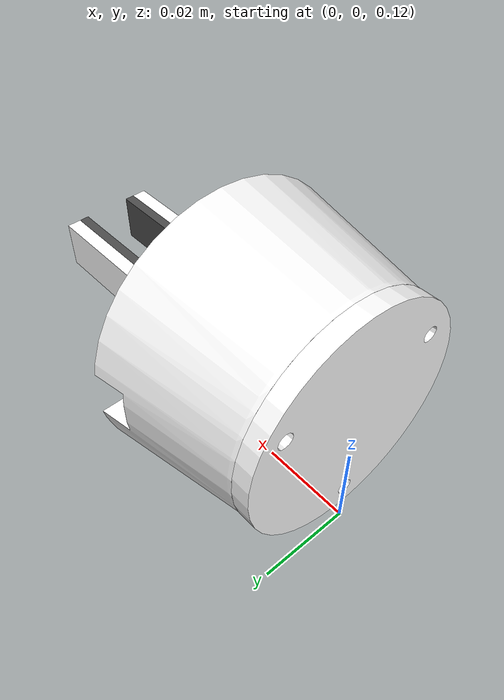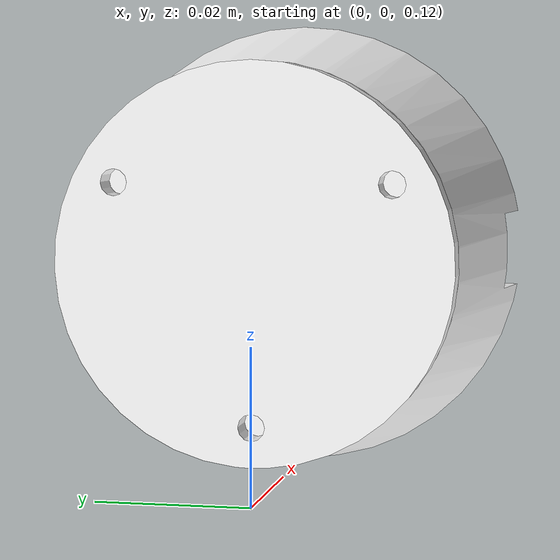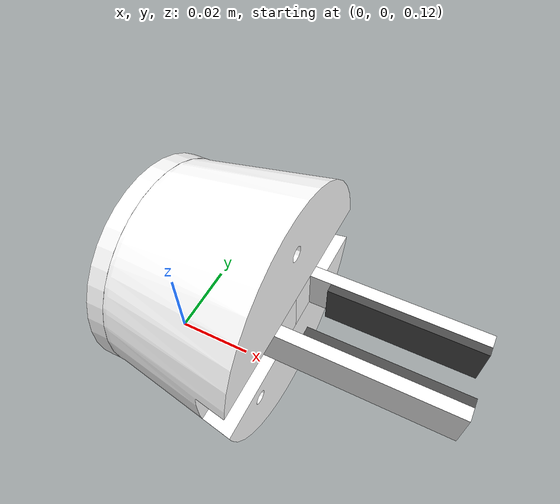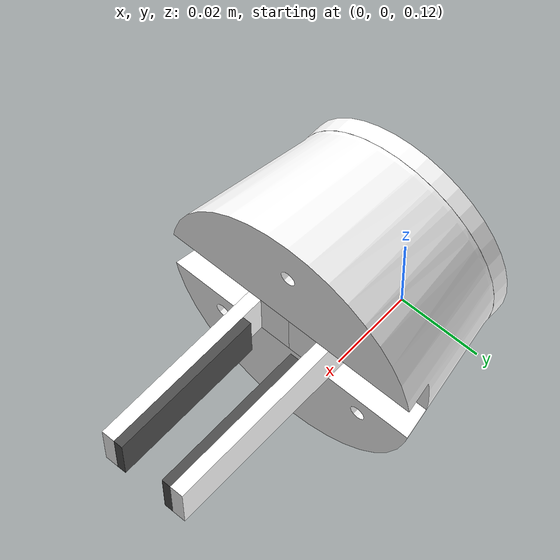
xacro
<?xml version="1.0"?>
<!-- Author: Emanuel Fallas Hernandez efallashdez@gmail.com -->
<!-- Published under GNU GPLv3 license -->

<!-- This xacro generates a simple parallel gripper that has variable z position -->
<robot name="thor" xmlns:xacro="http://www.ros.org/wiki/xacro">
  <xacro:arg name="prefix" default=""/>

  <!-- Load URDF XACRO -->
  <xacro:include filename="$(find gripper_description)/urdf/gripper.urdf.xacro"/>

  <xacro:macro name="generate_urdf" params="prefix">
    <xacro:gripper prefix="${prefix}"/>

    <link name="world" />

    <joint
      name="${prefix}base_prismatic"
      type="prismatic">
      <origin
        xyz="0 0 0.15"
        rpy="0 1.5708 0" />
      <parent link="world"/>
      <child link="${prefix}gripper_base"/>
      <axis
        xyz="-1 0 0" />
      <limit
        lower="0"
        upper="0.1"
        effort="100"
        velocity="1" />
      <dynamics
        damping="0.01" />
    </joint>

    <transmission name="${prefix}base_trans">
        <type>transmission_interface/SimpleTransmission</type>
        <joint name="${prefix}base_prismatic">
            <hardwareInterface>hardware_interface/EffortJointInterface</hardwareInterface>
        </joint>
        <actuator name="${prefix}base_motor">
            <hardwareInterface>hardware_interface/EffortJointInterface</hardwareInterface>
            <mechanicalReduction>1</mechanicalReduction>
        </actuator>
    </transmission>

    <!-- Gazebo -->
    <gazebo>
        <plugin name="gazebo_ros_control" filename="libgazebo_ros_control.so"/>
    </gazebo>

  </xacro:macro>

  <xacro:generate_urdf prefix="$(arg prefix)"/>

</robot>

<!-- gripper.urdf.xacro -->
<!-- Modified by: Emanuel Fallas Hernandez efallashdez@gmail.com -->
<!-- Published under GNU GPLv3 license -->

<!-- This xacro generates a simple parallel gripper that can be duplicated by using a prefix -->

<robot
  xmlns:xacro="http://wiki.ros.org/xacro">

  <!-- MAIN MACRO: Generates the URDF of the gripper-->
  <xacro:macro name="gripper" params="prefix">
    <!--File with gazebo configuration-->
    <xacro:include filename="$(find gripper_description)/urdf/gripper.gazebo"/>
    <!-- Import Transmission xacro file-->
    <xacro:include filename="$(find gripper_description)/urdf/transmission.xacro"/>
    <xacro:property name="effort_gripper" value="100" />
    <xacro:property name="velocity_gripper" value="0.1" />
    <xacro:property name="damping_gripper" value="0.1" />

    <link
      name="${prefix}gripper_base">
      <inertial>
        <origin
          xyz="-9.4786E-19 6.9421E-19 0.002"
          rpy="0 0 0" />
        <mass
          value="0.0078999" />
        <inertia
          ixx="1.24E-06"
          ixy="-1.0813E-22"
          ixz="1.2359E-25"
          iyy="1.24E-06"
          iyz="8.2395E-26"
          izz="2.4588E-06" />
      </inertial>
      <visual>
        <origin
          xyz="0 0 0"
          rpy="0 0 0" />
        <geometry>
          <mesh
            filename="package://gripper_description/meshes/base_link.STL" />
        </geometry>
        <material
          name="">
          <color
            rgba="1 1 1 1" />
        </material>
      </visual>
      <collision>
        <origin
          xyz="0 0 0"
          rpy="0 0 0" />
        <geometry>
          <mesh
            filename="package://gripper_description/meshes/base_link.STL" />
        </geometry>
      </collision>
    </link>
    <link
      name="${prefix}gripper_link">
      <inertial>
        <origin
          xyz="-0.037682 4.5614E-19 -3.4273E-18"
          rpy="0 0 0" />
        <mass
          value="0.069862" />
        <inertia
          ixx="2.6995E-05"
          ixy="1.1307E-21"
          ixz="-6.5874E-22"
          iyy="1.9395E-05"
          iyz="6.5987E-22"
          izz="1.8235E-05" />
      </inertial>
      <visual>
        <origin
          xyz="0 0 0"
          rpy="0 0 0" />
        <geometry>
          <mesh
            filename="package://gripper_description/meshes/gripper_link.STL" />
        </geometry>
        <material
          name="">
          <color
            rgba="1 1 1 1" />
        </material>
      </visual>
      <collision>
        <origin
          xyz="0 0 0"
          rpy="0 0 0" />
        <geometry>
          <mesh
            filename="package://gripper_description/meshes/gripper_link.STL" />
        </geometry>
      </collision>
    </link>
    <joint
      name="${prefix}gripper_to_base"
      type="fixed">
      <origin
        xyz="0 0 0.0575"
        rpy="3.1416 -1.5708 0" />
      <parent
        link="${prefix}gripper_base" />
      <child
        link="${prefix}gripper_link" />
      <axis
        xyz="0 0 0" />
    </joint>
    <link
      name="${prefix}finger1_link">
      <inertial>
        <origin
          xyz="7.0493E-20 -0.0072105 0.018342"
          rpy="0 0 0" />
        <mass
          value="0.001938" />
        <inertia
          ixx="4.2754E-07"
          ixy="2.345E-24"
          ixz="-5.1128E-24"
          iyy="4.313E-07"
          iyz="3.709E-08"
          izz="2.8542E-08" />
      </inertial>
      <visual>
        <origin
          xyz="0 0 0"
          rpy="0 0 0" />
        <geometry>
          <mesh
            filename="package://gripper_description/meshes/finger1_link.STL" />
        </geometry>
        <material
          name="">
          <color
            rgba="1 1 1 1" />
        </material>
      </visual>
      <collision>
        <origin
          xyz="0 0 0"
          rpy="0 0 0" />
        <geometry>
          <mesh
            filename="package://gripper_description/meshes/finger1_link.STL" />
        </geometry>
      </collision>
    </link>
    <joint
      name="${prefix}finger1_prismatic"
      type="prismatic">
      <origin
        xyz="-0.0295 0 0"
        rpy="0 1.5708 0" />
      <parent
        link="${prefix}gripper_link" />
      <child
        link="${prefix}finger1_link" />
      <axis
        xyz="0 -1 0" />
      <limit
        lower="0"
        upper="0.02"
        effort="${effort_gripper}"
        velocity="${velocity_gripper}" />
      <dynamics
        damping="${damping_gripper}" />
    </joint>
    <link
      name="${prefix}rubber1">
      <inertial>
        <origin
          xyz="8.0461E-19 6.9389E-18 0.001"
          rpy="0 0 0" />
        <mass
          value="0.00081144" />
        <inertia
          ixx="8.3105E-08"
          ixy="9.6119E-24"
          ixz="6.5605E-25"
          iyy="7.0325E-09"
          iyz="-5.909E-25"
          izz="8.9597E-08" />
      </inertial>
      <visual>
        <origin
          xyz="0 0 0"
          rpy="0 0 0" />
        <geometry>
          <mesh
            filename="package://gripper_description/meshes/rubber1.STL" />
        </geometry>
        <material
          name="">
          <color
            rgba="0.29804 0.29804 0.29804 1" />
        </material>
      </visual>
      <collision>
        <origin
          xyz="0 0 0"
          rpy="0 0 0" />
        <geometry>
          <mesh
            filename="package://gripper_description/meshes/rubber1.STL" />
        </geometry>
      </collision>
    </link>
    <joint
      name="${prefix}rubber1_to_finger"
      type="fixed">
      <origin
        xyz="0 -0.007 0.0295"
        rpy="1.5708 0 3.1416" />
      <parent
        link="${prefix}finger1_link" />
      <child
        link="${prefix}rubber1" />
      <axis
        xyz="0 0 0" />
    </joint>
    <link
      name="${prefix}finger2_link">
      <inertial>
        <origin
          xyz="1.2534E-18 0.0072105 0.018342"
          rpy="0 0 0" />
        <mass
          value="0.001938" />
        <inertia
          ixx="4.2754E-07"
          ixy="8.649E-25"
          ixz="1.4886E-23"
          iyy="4.313E-07"
          iyz="-3.709E-08"
          izz="2.8542E-08" />
      </inertial>
      <visual>
        <origin
          xyz="0 0 0"
          rpy="0 0 0" />
        <geometry>
          <mesh
            filename="package://gripper_description/meshes/finger2_link.STL" />
        </geometry>
        <material
          name="">
          <color
            rgba="1 1 1 1" />
        </material>
      </visual>
      <collision>
        <origin
          xyz="0 0 0"
          rpy="0 0 0" />
        <geometry>
          <mesh
            filename="package://gripper_description/meshes/finger2_link.STL" />
        </geometry>
      </collision>
    </link>
    <joint
      name="${prefix}finger2_prismatic"
      type="prismatic">
      <origin
        xyz="-0.0295 0 0"
        rpy="0 1.5708 0" />
      <parent
        link="${prefix}gripper_link" />
      <child
        link="${prefix}finger2_link" />
      <axis
        xyz="0 1 0" />
      <limit
        lower="0"
        upper="0.02"
        effort="${effort_gripper}"
        velocity="${velocity_gripper}" />
      <dynamics
        damping="${damping_gripper}" />
    </joint>
    <link
      name="${prefix}rubber2">
      <inertial>
        <origin
          xyz="-2.57E-11 -6.9389E-18 0.001"
          rpy="0 0 0" />
        <mass
          value="0.00081144" />
        <inertia
          ixx="8.3105E-08"
          ixy="-1.9801E-24"
          ixz="-1.6683E-16"
          iyy="7.0325E-09"
          iyz="-2.3755E-25"
          izz="8.9596E-08" />
      </inertial>
      <visual>
        <origin
          xyz="0 0 0"
          rpy="0 0 0" />
        <geometry>
          <mesh
            filename="package://gripper_description/meshes/rubber2.STL" />
        </geometry>
        <material
          name="">
          <color
            rgba="0.29804 0.29804 0.29804 1" />
        </material>
      </visual>
      <collision>
        <origin
          xyz="0 0 0"
          rpy="0 0 0" />
        <geometry>
          <mesh
            filename="package://gripper_description/meshes/rubber2.STL" />
        </geometry>
      </collision>
    </link>
    <joint
      name="${prefix}rubber2_to_finger"
      type="fixed">
      <origin
        xyz="0 0.007 0.0295"
        rpy="1.5708 0 0" />
      <parent
        link="${prefix}finger2_link" />
      <child
        link="${prefix}rubber2" />
      <axis
        xyz="0 0 0" />
      <limit
        lower="-0.001"
        effort="0"
        velocity="0" />
    </joint>

    <!-- Load gazebo configuration-->
    <xacro:gazebo_config prefix="${prefix}"/>
    <!-- Set transmissions from xacro file -->
    <xacro:gripper_transmission prefix="${prefix}"/>

  </xacro:macro>
</robot>
